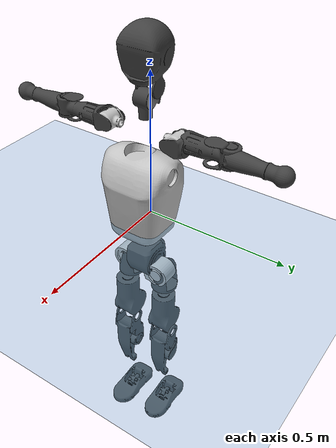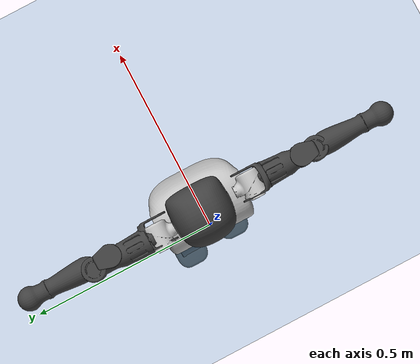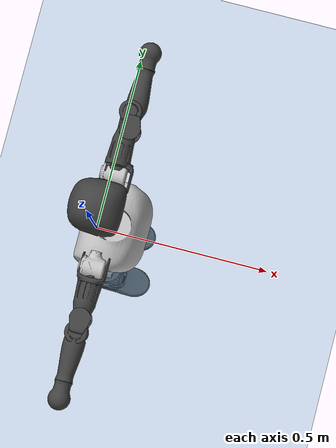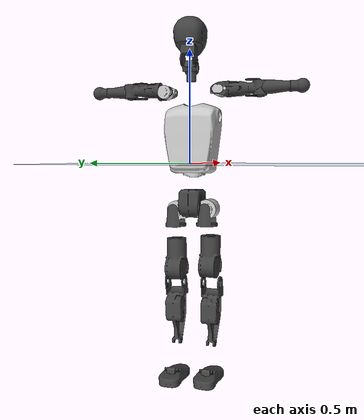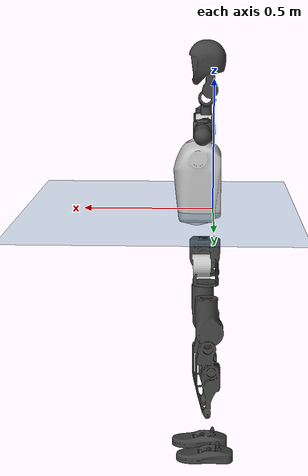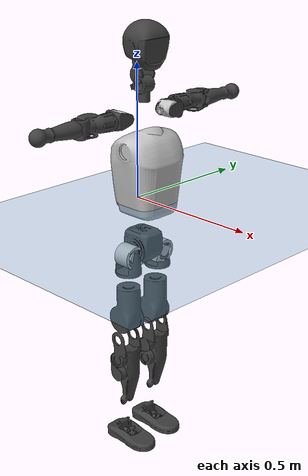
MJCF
<mujoco model="T1">
  <compiler angle="radian" assetdir="assets" balanceinertia="true" inertiafromgeom="false"/>

  <option timestep="0.005" density="1.2" viscosity="2e-05"/>

  <size nkey="1"/>

  <visual>
    <quality shadowsize="8192"/>
    <map shadowclip="0.5"/>
  </visual>

  <default>
    <default class="/">
      <joint armature="0.01" damping="0.01" frictionloss="0.1"/>
      <geom contype="0" conaffinity="0" group="1" solref="-1000 -80"/>
      <site size="0.01 0.005 0.005" group="5"/>
      <general forcelimited="true" biastype="affine" gainprm="25" biasprm="0 -25 -0.6"/>
      <default class="t1">
        <geom rgba="0.25 0.25 0.25 1"/>
        <default class="visual">
          <geom type="mesh" group="2"/>
        </default>
        <default class="collision">
          <geom group="3"/>
        </default>
        <default class="foot">
          <geom size="0.1115 0.05 0.015" type="box" condim="6" group="4" priority="1" solimp="0.015 1 0.015"/>
        </default>
        <default class="reward_collision_sphere">
          <geom group="5" rgba="1 0 0 1"/>
        </default>
      </default>
    </default>
  </default>

  <asset>
    <texture type="skybox" colorspace="auto" name="//unnamed_texture_0" builtin="gradient" rgb1="0.95 0.95 0.95" rgb2="0.95 0.95 0.95" width="100" height="600"/>
    <texture type="2d" colorspace="auto" name="texplane" builtin="checker" rgb1="0.345 0.575 0.748" rgb2="0.345 0.575 0.748" markrgb="1 1 1" width="512" height="512"/>
    <material name="MatPlane" class="/" texture="texplane" texuniform="true" texrepeat="2 2" specular="0.9"/>
    <mesh name="Trunk" class="/" file="Trunk.stl"/>
    <mesh name="H1" class="/" file="H1.stl"/>
    <mesh name="H2" class="/" file="H2.stl"/>
    <mesh name="AL1" class="/" file="AL1.stl"/>
    <mesh name="AL2" class="/" file="AL2.stl"/>
    <mesh name="AL3" class="/" file="AL3.stl"/>
    <mesh name="left_hand_link" class="/" file="left_hand_link.stl"/>
    <mesh name="AR1" class="/" file="AR1.stl"/>
    <mesh name="AR2" class="/" file="AR2.stl"/>
    <mesh name="AR3" class="/" file="AR3.stl"/>
    <mesh name="right_hand_link" class="/" file="right_hand_link.stl"/>
    <mesh name="Waist" class="/" file="Waist.stl"/>
    <mesh name="Hip_Pitch_Left" class="/" file="Hip_Pitch_Left.stl"/>
    <mesh name="Hip_Roll_Left" class="/" file="Hip_Roll_Left.stl"/>
    <mesh name="Hip_Yaw_Left" class="/" file="Hip_Yaw_Left.stl"/>
    <mesh name="Shank_Left" class="/" file="Shank_Left.stl"/>
    <mesh name="Ankle_Cross_Left" class="/" file="Ankle_Cross_Left.stl"/>
    <mesh name="left_foot_link" class="/" file="left_foot_link.stl"/>
    <mesh name="Hip_Pitch_Right" class="/" file="Hip_Pitch_Right.stl"/>
    <mesh name="Hip_Roll_Right" class="/" file="Hip_Roll_Right.stl"/>
    <mesh name="Hip_Yaw_Right" class="/" file="Hip_Yaw_Right.stl"/>
    <mesh name="Shank_Right" class="/" file="Shank_Right.stl"/>
    <mesh name="Ankle_Cross_Right" class="/" file="Ankle_Cross_Right.stl"/>
    <mesh name="right_foot_link" class="/" file="right_foot_link.stl"/>
  </asset>

  <worldbody>
    <geom name="floor" class="/" size="100 100 0.125" type="plane" group="0" material="MatPlane"/>
    <light name="toplight_shadow" class="/" pos="0 0 5" dir="0.0990148 0.0990148 -0.990148" type="directional" ambient="0.04 0.04 0.04" diffuse="0.55 0.55 0.55" specular="0.12 0.12 0.12"/>
    <light name="toplight_fill" class="/" pos="0 0 5" dir="0.0990148 0.0990148 -0.990148" type="directional" castshadow="false" ambient="0.04 0.04 0.04" diffuse="0.3 0.3 0.3" specular="0.08 0.08 0.08"/>
    <body name="trunk" childclass="t1" pos="-2.59629e-05 0.00155273 -0.00859069" quat="0.999997 -0.000544332 0.000237489 -0.00240325">
      <inertial pos="0.0350841 0.00790602 0.154682" quat="0.999938 -0.00488523 -0.00905248 -0.00420579" mass="9.58767" diaginertia="0.00246705 0.0169593 0.424485"/>
      <joint name="//unnamed_joint_0" type="free" armature="0" damping="0" frictionloss="0"/>
      <geom name="//unnamed_geom_1" class="visual" rgba="0.76 0.76 0.76 1" mesh="Trunk"/>
      <geom name="//unnamed_geom_2" class="collision" size="0.0688565 0.0918087 0.137713" pos="0.0299345 0 0.182321" type="box"/>
      <geom name="//unnamed_geom_3" class="reward_collision_sphere" size="0.10558" pos="0.0299345 0 0.151934"/>
      <geom name="//unnamed_geom_4" class="reward_collision_sphere" size="0.0137713" pos="0.0299345 0.0625608 0"/>
      <geom name="//unnamed_geom_5" class="reward_collision_sphere" size="0.0137713" pos="0.0299345 -0.0625608 0"/>
      <geom name="//unnamed_geom_6" class="reward_collision_sphere" size="0.0137713" pos="0.0299345 0.078753 0.273482"/>
      <geom name="//unnamed_geom_7" class="reward_collision_sphere" size="0.0137713" pos="0.0299345 -0.078753 0.273482"/>
      <site name="imu" pos="0.0639811 -0.0660193 0.0628241" size="0.00918087"/>
      <camera name="track" pos="0 -1.47202 0" quat="0.707107 0.707107 0 0" mode="trackcom"/>
      <camera name="ego_camera" pos="0.0608668 0 0.638124" quat="-0.5 -0.5 0.5 0.5"/>
      <body name="H1" pos="0.0302358 0.00158561 0.373143" quat="0.999981 -0.00137768 -0.000895683 0.00601201">
        <inertial pos="-0.00104509 -0.00252025 0.0826415" quat="0.769371 -0.0100643 0.00167178 0.63872" mass="0.244132" diaginertia="7.20711e-06 3.93561e-05 0.00102623"/>
        <joint name="AAHead_yaw" pos="0 0 0" axis="-0.0251479 0.0266564 0.999328" stiffness="0.0125165" range="-1.59593 1.55371" armature="0.00267459" damping="0.051706" frictionloss="0.0961916"/>
        <geom name="//unnamed_geom_8" class="visual" mesh="H1"/>
        <body name="H2" pos="-0.0145445 0.00750752 0.0946253" quat="0.999995 0.00216629 -0.00222885 0.00105732">
          <inertial pos="0.00222781 -0.00148578 0.149901" quat="0.989578 0.0953089 -0.07487 -0.0777613" mass="0.517043" diaginertia="6.43494e-05 0.000421537 0.0129024"/>
          <joint name="Head_pitch" pos="0 0 0" axis="-0.0164651 -0.999007 -0.0413988" range="-1.17499 0.502835" armature="0.0073248" damping="0.0324054" frictionloss="0.0978644"/>
          <geom name="//unnamed_geom_9" class="visual" mesh="H2"/>
          <geom name="//unnamed_geom_10" class="collision" size="0.0734469" pos="0.00498908 0 0.167128"/>
          <geom name="//unnamed_geom_11" class="reward_collision_sphere" size="0.0826278" pos="0.00997817 0 0.151934"/>
        </body>
      </body>
      <body name="AL1" pos="0.030904 0.076134 0.328865" quat="0.999989 -0.0027377 -0.00111131 0.003724">
        <inertial pos="-0.00107438 0.0222465 0.0002863" quat="0.508112 0.495167 -0.50844 0.487977" mass="0.40795" diaginertia="3.80532e-05 0.000296173 0.00251903"/>
        <joint name="Left_Shoulder_Pitch" pos="0 0 0" axis="0.00410553 0.999991 -0.000665175" stiffness="0.024584" range="-3.41756 1.24074" armature="0.0108341" damping="0.00800422" frictionloss="0.128981"/>
        <geom name="//unnamed_geom_12" class="visual" rgba="0.76 0.76 0.76 1" mesh="AL1"/>
        <body name="AL2" pos="0.0104793 0.0280076 0.000680392" quat="1 -2.21301e-05 -0.000144679 -6.94898e-05">
          <inertial pos="0.00225458 0.0313323 -0.0115083" quat="0.488004 0.511984 -0.487768 0.51167" mass="0.0946709" diaginertia="1.08796e-05 7.63987e-05 0.00116626"/>
          <joint name="Left_Shoulder_Roll" pos="0 0 0" axis="-0.999473 0.0306957 -0.0105715" range="-1.82419 1.4911" armature="0.0144329" damping="0.0453907" frictionloss="0.0955555"/>
          <geom name="//unnamed_geom_13" class="visual" mesh="AL2"/>
          <body name="AL3" pos="-0.00822041 0.044394 0.0111188" quat="1 -0.000272525 0.000481614 -0.000483991">
            <inertial pos="-0.00830681 0.0633513 0.000242817" quat="0.694857 0.718587 -0.0113321 0.026045" mass="0.850007" diaginertia="0.000467712 0.00261609 0.00621119"/>
            <joint name="Left_Elbow_Pitch" pos="0 0 0" axis="-0.0578032 -0.997591 -0.0383573" stiffness="0.0668281" range="-2.52644 2.0623" armature="0.0157084" damping="0.0798293" frictionloss="0.133684"/>
            <geom name="//unnamed_geom_14" class="visual" mesh="AL3"/>
            <geom name="//unnamed_geom_15" class="collision" size="0.0275426 0.0688565" pos="0 0.0368005 0" quat="0.707105 0.707108 0 0" type="cylinder"/>
            <geom name="//unnamed_geom_16" class="reward_collision_sphere" size="0.0330511"/>
            <body name="left_hand_link" pos="0.010327 0.0986015 0.000103628" quat="0.999995 0.000778864 0.00297858 0.000185791">
              <inertial pos="0.00175896 0.0788106 -0.00626056" quat="0.708529 0.705682 -0.000429119 -0.000137788" mass="0.253803" diaginertia="0.000219748 0.00151932 0.00177391"/>
              <joint name="Left_Elbow_Yaw" pos="0 0 0" axis="-0.0176334 0.0384498 0.999105" stiffness="0.0173765" range="-2.31337 -0.00837978" armature="0.00278657" damping="0.000573744" frictionloss="0.12628"/>
              <geom name="//unnamed_geom_17" class="visual" mesh="left_hand_link"/>
              <geom name="//unnamed_geom_18" class="collision" size="0.0275426 0.0803326" pos="0 0.0956812 0" quat="0.707105 0.707108 0 0" type="cylinder"/>
              <geom name="//unnamed_geom_19" class="reward_collision_sphere" size="0.0459043"/>
              <geom name="//unnamed_geom_20" class="reward_collision_sphere" size="0.032133" pos="0 0.080961 0"/>
              <geom name="//unnamed_geom_21" class="reward_collision_sphere" size="0.032133" pos="0 0.158242 0"/>
            </body>
          </body>
        </body>
      </body>
      <body name="AR1" pos="0.0394269 -0.0852676 0.333565" quat="1 0.000167827 0.000738328 -6.69341e-06">
        <inertial pos="0.0119676 -0.0384061 -0.0091676" quat="0.529027 0.527275 -0.499491 0.438884" mass="0.376701" diaginertia="4.58699e-05 0.000303628 0.00199544"/>
        <joint name="Right_Shoulder_Pitch" pos="0 0 0" axis="-0.00337154 -0.999975 -0.00616786" range="-1.23376 3.33538" armature="0.0097909" damping="0" frictionloss="0.133267"/>
        <geom name="//unnamed_geom_22" class="visual" rgba="0.76 0.76 0.76 1" mesh="AR1"/>
        <body name="AR2" pos="0.00361348 -0.0299698 0.00175006" quat="0.999998 -0.000296581 -0.00216586 -0.000406056">
          <inertial pos="-0.00198129 -0.0295411 -0.00608182" quat="0.513224 0.485208 -0.51365 0.487173" mass="0.125063" diaginertia="1.23734e-05 6.40145e-05 0.00130475"/>
          <joint name="Right_Shoulder_Roll" pos="0 0 0" axis="-0.999658 -0.0241602 0.00996411" stiffness="0.0060034" range="-1.87552 1.30595" armature="0.0131431" damping="0" frictionloss="0.0831749"/>
          <geom name="//unnamed_geom_23" class="visual" mesh="AR2"/>
          <body name="AR3" pos="0.00093086 -0.0426746 -0.0010208" quat="1 0.000350389 0.000629603 -0.000266545">
            <inertial pos="-0.00192652 -0.0503083 -0.010158" quat="0.711211 0.701447 0.00240701 -0.0463149" mass="0.769583" diaginertia="0.000371061 0.00313636 0.00446854"/>
            <joint name="Right_Elbow_Pitch" pos="0 0 0" axis="-0.017804 0.999527 0.0250802" range="-2.42564 2.45757" armature="0.00867552" damping="0" frictionloss="0.0942515"/>
            <geom name="//unnamed_geom_24" class="visual" mesh="AR3"/>
            <geom name="//unnamed_geom_25" class="collision" size="0.0275426 0.0688565" pos="0 -0.0368005 0" quat="0.707105 0.707108 0 0" type="cylinder"/>
            <geom name="//unnamed_geom_26" class="reward_collision_sphere" size="0.0330511"/>
            <body name="right_hand_link" pos="0.00128893 -0.109579 0.00302135" quat="0.999996 0.000312301 -0.00287192 -0.000607353">
              <inertial pos="0.000934618 -0.0787944 0.0113118" quat="0.70387 0.710326 -0.00183147 0.000781137" mass="0.265184" diaginertia="0.000239204 0.00172733 0.00191453"/>
              <joint name="Right_Elbow_Yaw" pos="0 0 0" axis="-0.00502853 -0.00338442 0.999982" range="-0.0323805 2.46315" armature="0.00930695" damping="0.0254241" frictionloss="0.0521497"/>
              <geom name="//unnamed_geom_27" class="visual" mesh="right_hand_link"/>
              <geom name="//unnamed_geom_28" class="collision" size="0.0275426 0.0803326" pos="0 -0.0956812 0" quat="0.707105 0.707108 0 0" type="cylinder"/>
              <geom name="//unnamed_geom_29" class="reward_collision_sphere" size="0.0459043"/>
              <geom name="//unnamed_geom_30" class="reward_collision_sphere" size="0.032133" pos="0 -0.080961 0"/>
              <geom name="//unnamed_geom_31" class="reward_collision_sphere" size="0.032133" pos="0 -0.158242 0"/>
            </body>
          </body>
        </body>
      </body>
      <body name="Waist" pos="0.0308793 -0.00173585 -0.173801" quat="0.999993 0.00338528 -0.00162505 -0.000403625">
        <inertial pos="0.0161492 -0.0093105 0.0108276" quat="0.983421 0.00483492 -0.181234 0.00378253" mass="2.21732" diaginertia="0.000205368 0.00126224 0.037297"/>
        <joint name="Waist" pos="0 0 0" axis="-0.0503793 -0.0417902 0.997855" range="-1.66 1.66482" armature="0.0121169" damping="0" frictionloss="0.0873164"/>
        <geom name="//unnamed_geom_32" class="visual" mesh="Waist"/>
        <body name="Hip_Pitch_Left" pos="0.0119753 0.070423 -0.0091068" quat="0.999973 -0.00565209 0.0029468 0.00375476">
          <inertial pos="0.0105463 -0.0182797 -0.0285499" quat="0.975409 0.21988 0.0150422 0.00186748" mass="0.848532" diaginertia="6.42193e-05 0.000382887 0.00991497"/>
          <joint name="Left_Hip_Pitch" pos="0 0 0" axis="-0.00340579 0.999579 -0.028814" range="-1.73625 1.56969" armature="0.0142057" damping="0.00350867" frictionloss="0.0305785"/>
          <geom name="//unnamed_geom_33" class="visual" rgba="0.76 0.76 0.76 1" mesh="Hip_Pitch_Left"/>
          <body name="Hip_Roll_Left" pos="-0.0145122 0.0090752 -0.0158174" quat="0.999973 -0.00650549 -0.00280045 0.00177585">
            <inertial pos="-0.00755469 0.00580762 -0.0691217" quat="0.710189 -0.00556174 -0.0076745 0.703947" mass="0.313308" diaginertia="5.28611e-05 0.000310388 0.00393074"/>
            <joint name="Left_Hip_Roll" pos="0 0 0" axis="-0.999892 -0.00430045 0.0140523" range="-1.58565 0.207581" armature="0.00549933" damping="0" frictionloss="0.0938215"/>
            <geom name="//unnamed_geom_34" class="visual" mesh="Hip_Roll_Left"/>
            <geom name="//unnamed_geom_35" class="reward_collision_sphere" size="0.0504948"/>
            <body name="Hip_Yaw_Left" pos="-0.00654322 -0.00444015 -0.131502" quat="0.999999 -2.94277e-05 -0.000920544 0.00103753">
              <inertial pos="-0.00569954 -0.0145236 -0.147968" quat="0.702946 -0.0433066 -0.0454702 0.708466" mass="1.73156" diaginertia="0.000826288 0.00567578 0.0212921"/>
              <joint name="Left_Hip_Yaw" pos="0 0 0" axis="0.0194322 0.0134539 -0.999721" range="-1.03469 0.984769" armature="0.00951228" damping="0.0126752" frictionloss="0.0527588"/>
              <geom name="//unnamed_geom_36" class="visual" mesh="Hip_Yaw_Left"/>
              <geom name="//unnamed_geom_37" class="collision" size="0.0459043 0.0734469" type="cylinder"/>
              <body name="Shank_Left" pos="-0.00772261 0.00409024 -0.195722" quat="0.999987 -0.00218776 0.00442679 -0.0014815">
                <inertial pos="-0.00197352 0.0091281 -0.194484" quat="0.992599 0.0402627 -0.037536 0.108244" mass="1.43084" diaginertia="0.00109496 0.00704628 0.015515"/>
                <joint name="Left_Knee_Pitch" pos="0 0 0" axis="-0.0155888 0.999769 0.0148086" stiffness="0.00116769" range="-0.0259208 2.56196" armature="0.00428468" damping="0.0344841" frictionloss="0.0915342"/>
                <geom name="//unnamed_geom_38" class="visual" mesh="Shank_Left"/>
                <geom name="//unnamed_geom_39" class="collision" size="0.0459043 0.0688565" pos="0 0 -0.182321" type="cylinder"/>
                <geom name="//unnamed_geom_40" class="reward_collision_sphere" size="0.0596756"/>
                <body name="Ankle_Cross_Left" pos="-0.00700275 0.0101349 -0.429215" quat="0.999996 -0.000165912 -0.00249454 0.00148832">
                  <inertial pos="9.97014e-05 0.000944631 -0.0166056" quat="0.420391 0.586956 0.528031 0.447143" mass="0.0594027" diaginertia="7.50728e-07 5.2911e-06 8.71184e-05"/>
                  <joint name="Left_Ankle_Pitch" pos="0 0 0" axis="0.0050674 0.999986 0.00127217" range="-0.609036 0.0903975" armature="0.00562727" damping="0.0779259" frictionloss="0.0559867"/>
                  <geom name="//unnamed_geom_41" class="visual" mesh="Ankle_Cross_Left"/>
                  <body name="left_foot_link" pos="0.00730903 0.00728641 -0.00672969" quat="0.999979 0.00653551 0.00020228 -0.000384183">
                    <inertial pos="0.00314011 -0.00274279 -0.0142486" quat="0.0401603 0.605533 0.0243703 0.794432" mass="0.437429" diaginertia="7.28992e-05 0.000420587 0.0118305"/>
                    <joint name="Left_Ankle_Roll" pos="0 0 0" axis="-0.998432 0.0374967 0.0415651" range="-0.445176 0.171544" armature="0.00841315" damping="0.00743682" frictionloss="0.0230932"/>
                    <geom name="//unnamed_geom_42" class="visual" mesh="left_foot_link"/>
                    <geom name="left_foot" class="foot" size="0.0945075 0.0653499 0.00607653" pos="0.00498908 0 -0.0227901"/>
                    <geom name="//unnamed_geom_44" class="reward_collision_sphere" size="0.0477405" pos="0.00498908 0 -0.0227901"/>
                    <geom name="//unnamed_geom_45" class="reward_collision_sphere" size="0.0275426" pos="0.0473963 -0.0169282 -0.0227901"/>
                    <geom name="//unnamed_geom_46" class="reward_collision_sphere" size="0.0275426" pos="-0.0349236 -0.0169282 -0.0227901"/>
                    <site name="left_foot" class="foot" pos="0.00498908 0 -0.0227901" size="0.00918087"/>
                  </body>
                </body>
              </body>
            </body>
          </body>
        </body>
        <body name="Hip_Pitch_Right" pos="0.00294311 -0.0758097 0.00124374" quat="1 0.00016332 0.000622855 -0.00062728">
          <inertial pos="0.00593303 0.00546362 -0.0210372" quat="0.975609 -0.206274 0.0433897 -0.0612773" mass="0.99098" diaginertia="6.53294e-05 0.000339414 0.0125837"/>
          <joint name="Right_Hip_Pitch" pos="0 0 0" axis="-0.00143191 -0.999877 0.0156319" range="-1.57698 1.9436" armature="0.00616983" damping="0.00686998" frictionloss="0.0969315"/>
          <geom name="//unnamed_geom_47" class="visual" rgba="0.76 0.76 0.76 1" mesh="Hip_Pitch_Right"/>
          <body name="Hip_Roll_Right" pos="-0.00774318 0.00369528 -0.0181831" quat="0.999999 0.000626099 0.000871672 -0.000182607">
            <inertial pos="0.00390231 -0.00861161 -0.0813549" quat="0.704346 0.00746691 0.0400588 0.708686" mass="0.322509" diaginertia="5.1862e-05 0.000314352 0.00457275"/>
            <joint name="Right_Hip_Roll" pos="0 0 0" axis="-0.999862 0.00637511 0.0153288" stiffness="0.07361" range="-0.154296 1.54443" armature="0.0129553" damping="0.00749844" frictionloss="0.0974793"/>
            <geom name="//unnamed_geom_48" class="visual" mesh="Hip_Roll_Right"/>
            <geom name="//unnamed_geom_49" class="reward_collision_sphere" size="0.0504948"/>
            <body name="Hip_Yaw_Right" pos="0.0114599 -0.0141884 -0.122203" quat="1 -0.000544773 3.93535e-05 0.000501301">
              <inertial pos="0.00637197 0.000104247 -0.12193" quat="0.715551 -0.0753875 -0.00567239 0.694457" mass="1.40287" diaginertia="0.000773948 0.0052131 0.0200036"/>
              <joint name="Right_Hip_Yaw" pos="0 0 0" axis="0.00457743 -0.00966687 -0.999943" stiffness="0.0209281" range="-1.23194 1.15033" armature="0.0087505" damping="0.0212547" frictionloss="0.0874565"/>
              <geom name="//unnamed_geom_50" class="visual" mesh="Hip_Yaw_Right"/>
              <geom name="//unnamed_geom_51" class="collision" size="0.0459043 0.0734469" type="cylinder"/>
              <body name="Shank_Right" pos="-0.00954605 -0.00965326 -0.212998" quat="1 -0.000698079 -0.00060767 0.000194818">
                <inertial pos="-0.0178541 -0.0019164 -0.180449" quat="0.996784 0.0407956 -0.0570725 -0.0387382" mass="1.74805" diaginertia="0.00122915 0.00735084 0.0177993"/>
                <joint name="Right_Knee_Pitch" pos="0 0 0" axis="-0.021316 -0.998722 -0.0458364" stiffness="0.00265696" range="-2.34157 -0.0611884" armature="0.00584782" damping="0.0414953" frictionloss="0.0456345"/>
                <geom name="//unnamed_geom_52" class="visual" mesh="Shank_Right"/>
                <geom name="//unnamed_geom_53" class="collision" size="0.0459043 0.0688565" pos="0 0 -0.182321" type="cylinder"/>
                <geom name="//unnamed_geom_54" class="reward_collision_sphere" size="0.0596756"/>
                <body name="Ankle_Cross_Right" pos="0.00706571 0.0133935 -0.421947" quat="0.99998 -0.000569744 -0.00620399 -0.00127838">
                  <inertial pos="0.000722372 0.001621 -0.0104082" quat="0.442148 0.551096 0.549764 0.445598" mass="0.0560676" diaginertia="1.01734e-06 5.38815e-06 9.62066e-05"/>
                  <joint name="Right_Ankle_Pitch" pos="0 0 0" axis="0.00900254 -0.999643 -0.0251583" range="-0.220493 0.60053" armature="0.00936064" damping="0" frictionloss="0.0888011"/>
                  <geom name="//unnamed_geom_55" class="visual" mesh="Ankle_Cross_Right"/>
                  <body name="right_foot_link" pos="-0.000495569 -0.00122254 -0.00998117" quat="0.999987 -0.00268941 -0.000460955 -0.00434741">
                    <inertial pos="0.00997652 0.00254546 -0.0147869" quat="0.0200541 0.620746 -0.00741897 0.78372" mass="0.531314" diaginertia="9.72813e-05 0.000573843 0.0188612"/>
                    <joint name="Right_Ankle_Roll" pos="0 0 0" axis="-0.999996 -0.00143681 0.00261352" range="-0.591091 0.572486" armature="0.00738906" damping="0.00303112" frictionloss="0.0774503"/>
                    <geom name="//unnamed_geom_56" class="visual" mesh="right_foot_link"/>
                    <geom name="right_foot" class="foot" size="0.103025 0.061597 0.0139677" pos="0.00498908 0 -0.0227901"/>
                    <geom name="//unnamed_geom_58" class="reward_collision_sphere" size="0.0367235"/>
                    <geom name="//unnamed_geom_59" class="reward_collision_sphere" size="0.0275426" pos="0.00498908 0 -0.0227901"/>
                    <geom name="//unnamed_geom_60" class="reward_collision_sphere" size="0.0275426" pos="0.0473963 0.0169282 -0.0227901"/>
                    <geom name="//unnamed_geom_61" class="reward_collision_sphere" size="0.0275426" pos="-0.0349236 0.0169282 -0.0227901"/>
                    <site name="right_foot" class="foot" pos="0.00498908 0 -0.0227901" size="0.00918087"/>
                  </body>
                </body>
              </body>
            </body>
          </body>
        </body>
      </body>
    </body>
  </worldbody>

  <contact>
    <pair class="/" geom1="floor" geom2="left_foot" name="//unnamed_contact_0"/>
    <pair class="/" geom1="floor" geom2="right_foot" name="//unnamed_contact_1"/>
  </contact>

  <actuator>
    <general name="AAHead_yaw" class="/" joint="AAHead_yaw" forcerange="-7.47067 7.47067" gainprm="30.3469" biasprm="0 -30.3469 -0.612583"/>
    <general name="Head_pitch" class="/" joint="Head_pitch" forcerange="-5.63782 5.63782" gainprm="30.3469" biasprm="0 -30.3469 -0.612583"/>
    <general name="Left_Shoulder_Pitch" class="/" joint="Left_Shoulder_Pitch" forcerange="-15.6336 15.6336" gainprm="30.3469" biasprm="0 -30.3469 -0.612583"/>
    <general name="Left_Shoulder_Roll" class="/" joint="Left_Shoulder_Roll" forcerange="-20.9705 20.9705" gainprm="30.3469" biasprm="0 -30.3469 -0.612583"/>
    <general name="Left_Elbow_Pitch" class="/" joint="Left_Elbow_Pitch" forcerange="-24.8137 24.8137" gainprm="30.3469" biasprm="0 -30.3469 -0.612583"/>
    <general name="Left_Elbow_Yaw" class="/" joint="Left_Elbow_Yaw" forcerange="-9.30501 9.30501" gainprm="30.3469" biasprm="0 -30.3469 -0.612583"/>
    <general name="Right_Shoulder_Pitch" class="/" joint="Right_Shoulder_Pitch" forcerange="-8.97723 8.97723" gainprm="30.3469" biasprm="0 -30.3469 -0.612583"/>
    <general name="Right_Shoulder_Roll" class="/" joint="Right_Shoulder_Roll" forcerange="-19.9002 19.9002" gainprm="30.3469" biasprm="0 -30.3469 -0.612583"/>
    <general name="Right_Elbow_Pitch" class="/" joint="Right_Elbow_Pitch" forcerange="-16.586 16.586" gainprm="30.3469" biasprm="0 -30.3469 -0.612583"/>
    <general name="Right_Elbow_Yaw" class="/" joint="Right_Elbow_Yaw" forcerange="-17.2027 17.2027" gainprm="30.3469" biasprm="0 -30.3469 -0.612583"/>
    <general name="Waist" class="/" joint="Waist" forcerange="-28.24 28.24" gainprm="30.3469" biasprm="0 -30.3469 -0.612583"/>
    <general name="Left_Hip_Pitch" class="/" joint="Left_Hip_Pitch" forcerange="-49.8205 49.8205" gainprm="30.3469" biasprm="0 -30.3469 -0.612583"/>
    <general name="Left_Hip_Roll" class="/" joint="Left_Hip_Roll" forcerange="-14.8979 14.8979" gainprm="30.3469" biasprm="0 -30.3469 -0.612583"/>
    <general name="Left_Hip_Yaw" class="/" joint="Left_Hip_Yaw" forcerange="-41.4914 41.4914" gainprm="30.3469" biasprm="0 -30.3469 -0.612583"/>
    <general name="Left_Knee_Pitch" class="/" joint="Left_Knee_Pitch" forcerange="-82.6718 82.6718" gainprm="30.3469" biasprm="0 -30.3469 -0.612583"/>
    <general name="Left_Ankle_Pitch" class="/" joint="Left_Ankle_Pitch" forcerange="-19.0509 19.0509" gainprm="30.3469" biasprm="0 -30.3469 -0.612583"/>
    <general name="Left_Ankle_Roll" class="/" joint="Left_Ankle_Roll" forcerange="-13.9461 13.9461" gainprm="30.3469" biasprm="0 -30.3469 -0.612583"/>
    <general name="Right_Hip_Pitch" class="/" joint="Right_Hip_Pitch" forcerange="-34.8047 34.8047" gainprm="30.3469" biasprm="0 -30.3469 -0.612583"/>
    <general name="Right_Hip_Roll" class="/" joint="Right_Hip_Roll" forcerange="-26.7309 26.7309" gainprm="30.3469" biasprm="0 -30.3469 -0.612583"/>
    <general name="Right_Hip_Yaw" class="/" joint="Right_Hip_Yaw" forcerange="-20.4635 20.4635" gainprm="30.3469" biasprm="0 -30.3469 -0.612583"/>
    <general name="Right_Knee_Pitch" class="/" joint="Right_Knee_Pitch" forcerange="-52.0354 52.0354" gainprm="30.3469" biasprm="0 -30.3469 -0.612583"/>
    <general name="Right_Ankle_Pitch" class="/" joint="Right_Ankle_Pitch" forcerange="-26.0824 26.0824" gainprm="30.3469" biasprm="0 -30.3469 -0.612583"/>
    <general name="Right_Ankle_Roll" class="/" joint="Right_Ankle_Roll" forcerange="-13.9954 13.9954" gainprm="30.3469" biasprm="0 -30.3469 -0.612583"/>
  </actuator>

  <sensor>
    <gyro site="imu" name="imu_angular_velocity"/>
    <velocimeter site="imu" name="imu_linear_velocity"/>
    <framelinvel objtype="site" objname="left_foot" name="left_foot_global_linear_velocity"/>
    <framelinvel objtype="site" objname="right_foot" name="right_foot_global_linear_velocity"/>
  </sensor>

  <keyframe>
    <key name="home" qpos="0 0 0.6385 1 0 0 0 0 0 0 1.4 0 -0.4 0 -1.4 0 0.4 0 -0.4 0 0 0.8 -0.4 0 0.4 0 0 -0.8 0.4 0"/>
  </keyframe>
</mujoco>
